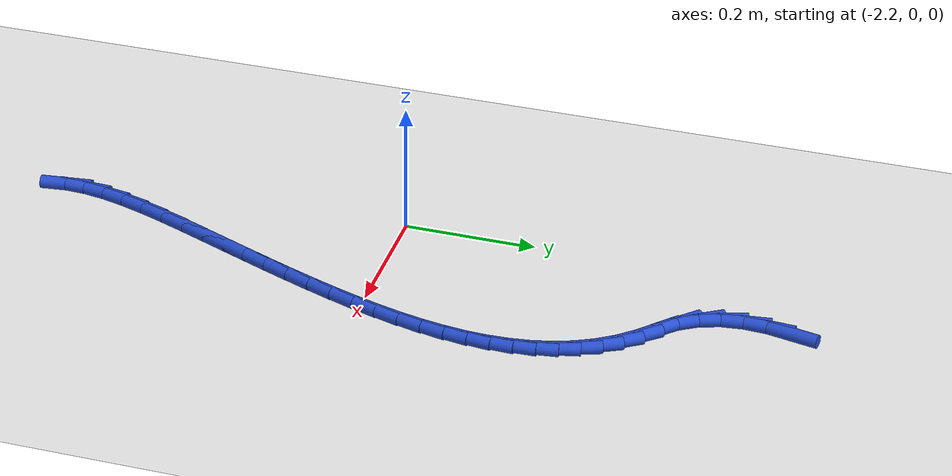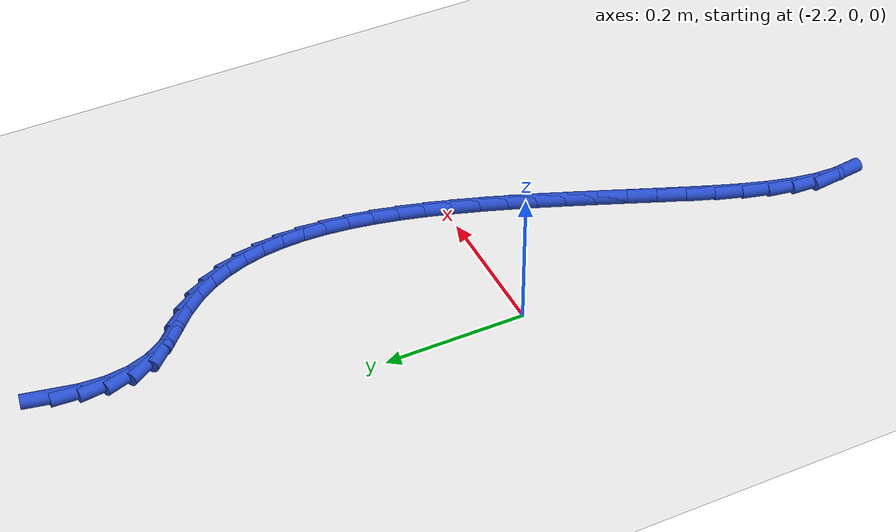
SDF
<sdf version="1.6">
 <world name="default">
  <model name="ground_plane">
   <static>1</static>
   <link name="link">
    <collision name="collision">
     <geometry><plane><normal>0 0 1</normal><size>100 100</size></plane></geometry>
     <surface><friction><ode><mu>100</mu><mu2>50</mu2></ode></friction></surface>
    </collision>
    <visual name="visual">
     <cast_shadows>0</cast_shadows>
     <geometry><plane><normal>0 0 1</normal><size>100 100</size></plane></geometry>
     <material>
      <script><uri>file://media/materials/scripts/gazebo.material</uri><name>Gazebo/WhiteGlow</name></script>
     </material>
    </visual>
   </link>
  </model>
  <model name="line">
   <link name="link_88">
    <pose>-2.0755575447734604 0.6091693701642646 0.01 0 1.57 1.3709296939682287</pose>
    <collision name="collision">
     <geometry><cylinder><radius>0.01</radius><length>0.08</length></cylinder></geometry>
    </collision>
    <visual name="visual">
     <material>
      <script><name>Gazebo/Blue</name><uri>file://media/materials/scripts/gazebo.material</uri></script>
     </material>
     <geometry><cylinder><radius>0.01</radius><length>0.08</length></cylinder></geometry>
    </visual>
   </link>
   <link name="link_89">
    <pose>-2.082812165718973 0.573356672024584 0.01 0 1.57 1.5164014801422128</pose>
    <collision name="collision">
     <geometry><cylinder><radius>0.01</radius><length>0.08</length></cylinder></geometry>
    </collision>
    <visual name="visual">
     <material>
      <script><name>Gazebo/Blue</name><uri>file://media/materials/scripts/gazebo.material</uri></script>
     </material>
     <geometry><cylinder><radius>0.01</radius><length>0.08</length></cylinder></geometry>
    </visual>
   </link>
   <link name="link_90">
    <pose>-2.0847019543621523 0.538648890746125 0.01 0 1.57 -1.450763806027646</pose>
    <collision name="collision">
     <geometry><cylinder><radius>0.01</radius><length>0.08</length></cylinder></geometry>
    </collision>
    <visual name="visual">
     <material>
      <script><name>Gazebo/Blue</name><uri>file://media/materials/scripts/gazebo.material</uri></script>
     </material>
     <geometry><cylinder><radius>0.01</radius><length>0.08</length></cylinder></geometry>
    </visual>
   </link>
   <link name="link_91">
    <pose>-2.0807313624344825 0.5057286089081323 0.01 0 1.57 -1.2438395106665938</pose>
    <collision name="collision">
     <geometry><cylinder><radius>0.01</radius><length>0.08</length></cylinder></geometry>
    </collision>
    <visual name="visual">
     <material>
      <script><name>Gazebo/Blue</name><uri>file://media/materials/scripts/gazebo.material</uri></script>
     </material>
     <geometry><cylinder><radius>0.01</radius><length>0.08</length></cylinder></geometry>
    </visual>
   </link>
   <link name="link_92">
    <pose>-2.070404841667447 0.4752784090898501 0.01 0 1.57 -1.009119800050276</pose>
    <collision name="collision">
     <geometry><cylinder><radius>0.01</radius><length>0.08</length></cylinder></geometry>
    </collision>
    <visual name="visual">
     <material>
      <script><name>Gazebo/Blue</name><uri>file://media/materials/scripts/gazebo.material</uri></script>
     </material>
     <geometry><cylinder><radius>0.01</radius><length>0.08</length></cylinder></geometry>
    </visual>
   </link>
   <link name="link_93">
    <pose>-2.053226843792532 0.44798087387052393 0.01 0 1.57 -0.7908722680773461</pose>
    <collision name="collision">
     <geometry><cylinder><radius>0.01</radius><length>0.08</length></cylinder></geometry>
    </collision>
    <visual name="visual">
     <material>
      <script><name>Gazebo/Blue</name><uri>file://media/materials/scripts/gazebo.material</uri></script>
     </material>
     <geometry><cylinder><radius>0.01</radius><length>0.08</length></cylinder></geometry>
    </visual>
   </link>
   <link name="link_94">
    <pose>-2.029565934565733 0.4240594915973769 0.01 0 1.57 -0.7531546775900435</pose>
    <collision name="collision">
     <geometry><cylinder><radius>0.01</radius><length>0.08</length></cylinder></geometry>
    </collision>
    <visual name="visual">
     <material>
      <script><name>Gazebo/Blue</name><uri>file://media/materials/scripts/gazebo.material</uri></script>
     </material>
     <geometry><cylinder><radius>0.01</radius><length>0.08</length></cylinder></geometry>
    </visual>
   </link>
   <link name="link_95">
    <pose>-2.0049580896609607 0.40098947995273265 0.01 0 1.57 -0.8614012740060931</pose>
    <collision name="collision">
     <geometry><cylinder><radius>0.01</radius><length>0.08</length></cylinder></geometry>
    </collision>
    <visual name="visual">
     <material>
      <script><name>Gazebo/Blue</name><uri>file://media/materials/scripts/gazebo.material</uri></script>
     </material>
     <geometry><cylinder><radius>0.01</radius><length>0.08</length></cylinder></geometry>
    </visual>
   </link>
   <link name="link_96">
    <pose>-1.9840000756799603 0.376576472054642 0.01 0 1.57 -0.9853960832167896</pose>
    <collision name="collision">
     <geometry><cylinder><radius>0.01</radius><length>0.08</length></cylinder></geometry>
    </collision>
    <visual name="visual">
     <material>
      <script><name>Gazebo/Blue</name><uri>file://media/materials/scripts/gazebo.material</uri></script>
     </material>
     <geometry><cylinder><radius>0.01</radius><length>0.08</length></cylinder></geometry>
    </visual>
   </link>
   <link name="link_97">
    <pose>-1.9668596951974717 0.35072036521623956 0.01 0 1.57 -1.1094852020513917</pose>
    <collision name="collision">
     <geometry><cylinder><radius>0.01</radius><length>0.08</length></cylinder></geometry>
    </collision>
    <visual name="visual">
     <material>
      <script><name>Gazebo/Blue</name><uri>file://media/materials/scripts/gazebo.material</uri></script>
     </material>
     <geometry><cylinder><radius>0.01</radius><length>0.08</length></cylinder></geometry>
    </visual>
   </link>
   <link name="link_98">
    <pose>-1.9533284318732258 0.32349901819745674 0.01 0 1.57 -1.2293606598366462</pose>
    <collision name="collision">
     <geometry><cylinder><radius>0.01</radius><length>0.08</length></cylinder></geometry>
    </collision>
    <visual name="visual">
     <material>
      <script><name>Gazebo/Blue</name><uri>file://media/materials/scripts/gazebo.material</uri></script>
     </material>
     <geometry><cylinder><radius>0.01</radius><length>0.08</length></cylinder></geometry>
    </visual>
   </link>
   <link name="link_99">
    <pose>-1.943197769366955 0.2949902897582256 0.01 0 1.57 -1.3414265563358536</pose>
    <collision name="collision">
     <geometry><cylinder><radius>0.01</radius><length>0.08</length></cylinder></geometry>
    </collision>
    <visual name="visual">
     <material>
      <script><name>Gazebo/Blue</name><uri>file://media/materials/scripts/gazebo.material</uri></script>
     </material>
     <geometry><cylinder><radius>0.01</radius><length>0.08</length></cylinder></geometry>
    </visual>
   </link>
   <link name="link_100">
    <pose>-1.9362591913383895 0.2652720386584775 0.01 0 1.57 -1.4432901941853533</pose>
    <collision name="collision">
     <geometry><cylinder><radius>0.01</radius><length>0.08</length></cylinder></geometry>
    </collision>
    <visual name="visual">
     <material>
      <script><name>Gazebo/Blue</name><uri>file://media/materials/scripts/gazebo.material</uri></script>
     </material>
     <geometry><cylinder><radius>0.01</radius><length>0.08</length></cylinder></geometry>
    </visual>
   </link>
   <link name="link_101">
    <pose>-1.932304181447261 0.23442212365814344 0.01 0 1.57 -1.5338282079335543</pose>
    <collision name="collision">
     <geometry><cylinder><radius>0.01</radius><length>0.08</length></cylinder></geometry>
    </collision>
    <visual name="visual">
     <material>
      <script><name>Gazebo/Blue</name><uri>file://media/materials/scripts/gazebo.material</uri></script>
     </material>
     <geometry><cylinder><radius>0.01</radius><length>0.08</length></cylinder></geometry>
    </visual>
   </link>
   <link name="link_102">
    <pose>-1.9311242233533006 0.20251840351715583 0.01 0 1.57 1.5286500274262012</pose>
    <collision name="collision">
     <geometry><cylinder><radius>0.01</radius><length>0.08</length></cylinder></geometry>
    </collision>
    <visual name="visual">
     <material>
      <script><name>Gazebo/Blue</name><uri>file://media/materials/scripts/gazebo.material</uri></script>
     </material>
     <geometry><cylinder><radius>0.01</radius><length>0.08</length></cylinder></geometry>
    </visual>
   </link>
   <link name="link_103">
    <pose>-1.93251080071624 0.16963873699544582 0.01 0 1.57 1.4603873175424436</pose>
    <collision name="collision">
     <geometry><cylinder><radius>0.01</radius><length>0.08</length></cylinder></geometry>
    </collision>
    <visual name="visual">
     <material>
      <script><name>Gazebo/Blue</name><uri>file://media/materials/scripts/gazebo.material</uri></script>
     </material>
     <geometry><cylinder><radius>0.01</radius><length>0.08</length></cylinder></geometry>
    </visual>
   </link>
   <link name="link_104">
    <pose>-1.9362553971958094 0.13586098285294504 0.01 0 1.57 1.402056670998876</pose>
    <collision name="collision">
     <geometry><cylinder><radius>0.01</radius><length>0.08</length></cylinder></geometry>
    </collision>
    <visual name="visual">
     <material>
      <script><name>Gazebo/Blue</name><uri>file://media/materials/scripts/gazebo.material</uri></script>
     </material>
     <geometry><cylinder><radius>0.01</radius><length>0.08</length></cylinder></geometry>
    </visual>
   </link>
   <link name="link_105">
    <pose>-1.9421494964517405 0.10126299984958484 0.01 0 1.57 1.3526215927438254</pose>
    <collision name="collision">
     <geometry><cylinder><radius>0.01</radius><length>0.08</length></cylinder></geometry>
    </collision>
    <visual name="visual">
     <material>
      <script><name>Gazebo/Blue</name><uri>file://media/materials/scripts/gazebo.material</uri></script>
     </material>
     <geometry><cylinder><radius>0.01</radius><length>0.08</length></cylinder></geometry>
    </visual>
   </link>
   <link name="link_106">
    <pose>-1.9499845821437658 0.06592264674529619 0.01 0 1.57 1.3110690570220092</pose>
    <collision name="collision">
     <geometry><cylinder><radius>0.01</radius><length>0.08</length></cylinder></geometry>
    </collision>
    <visual name="visual">
     <material>
      <script><name>Gazebo/Blue</name><uri>file://media/materials/scripts/gazebo.material</uri></script>
     </material>
     <geometry><cylinder><radius>0.01</radius><length>0.08</length></cylinder></geometry>
    </visual>
   </link>
   <link name="link_107">
    <pose>-1.959552137931615 0.029917782300012095 0.01 0 1.57 1.2764823913270738</pose>
    <collision name="collision">
     <geometry><cylinder><radius>0.01</radius><length>0.08</length></cylinder></geometry>
    </collision>
    <visual name="visual">
     <material>
      <script><name>Gazebo/Blue</name><uri>file://media/materials/scripts/gazebo.material</uri></script>
     </material>
     <geometry><cylinder><radius>0.01</radius><length>0.08</length></cylinder></geometry>
    </visual>
   </link>
   <link name="link_108">
    <pose>-1.9706436474750193 -0.006673734726336658 0.01 0 1.57 1.248071461053329</pose>
    <collision name="collision">
     <geometry><cylinder><radius>0.01</radius><length>0.08</length></cylinder></geometry>
    </collision>
    <visual name="visual">
     <material>
      <script><name>Gazebo/Blue</name><uri>file://media/materials/scripts/gazebo.material</uri></script>
     </material>
     <geometry><cylinder><radius>0.01</radius><length>0.08</length></cylinder></geometry>
    </visual>
   </link>
   <link name="link_109">
    <pose>-1.9830505944337111 -0.043774045573818476 0.01 0 1.57 1.2251789599161185</pose>
    <collision name="collision">
     <geometry><cylinder><radius>0.01</radius><length>0.08</length></cylinder></geometry>
    </collision>
    <visual name="visual">
     <material>
      <script><name>Gazebo/Blue</name><uri>file://media/materials/scripts/gazebo.material</uri></script>
     </material>
     <geometry><cylinder><radius>0.01</radius><length>0.08</length></cylinder></geometry>
    </visual>
   </link>
   <link name="link_110">
    <pose>-1.9965644624674208 -0.08130529148250192 0.01 0 1.57 1.2072750096784404</pose>
    <collision name="collision">
     <geometry><cylinder><radius>0.01</radius><length>0.08</length></cylinder></geometry>
    </collision>
    <visual name="visual">
     <material>
      <script><name>Gazebo/Blue</name><uri>file://media/materials/scripts/gazebo.material</uri></script>
     </material>
     <geometry><cylinder><radius>0.01</radius><length>0.08</length></cylinder></geometry>
    </visual>
   </link>
   <link name="link_111">
    <pose>-2.0109767352358796 -0.11918961369245526 0.01 0 1.57 1.193947246933236</pose>
    <collision name="collision">
     <geometry><cylinder><radius>0.01</radius><length>0.08</length></cylinder></geometry>
    </collision>
    <visual name="visual">
     <material>
      <script><name>Gazebo/Blue</name><uri>file://media/materials/scripts/gazebo.material</uri></script>
     </material>
     <geometry><cylinder><radius>0.01</radius><length>0.08</length></cylinder></geometry>
    </visual>
   </link>
   <link name="link_112">
    <pose>-2.02607889639882 -0.15734915344374803 0.01 0 1.57 1.1848903134334072</pose>
    <collision name="collision">
     <geometry><cylinder><radius>0.01</radius><length>0.08</length></cylinder></geometry>
    </collision>
    <visual name="visual">
     <material>
      <script><name>Gazebo/Blue</name><uri>file://media/materials/scripts/gazebo.material</uri></script>
     </material>
     <geometry><cylinder><radius>0.01</radius><length>0.08</length></cylinder></geometry>
    </visual>
   </link>
   <link name="link_113">
    <pose>-2.041662429615971 -0.19570605197644675 0.01 0 1.57 1.1798967411482812</pose>
    <collision name="collision">
     <geometry><cylinder><radius>0.01</radius><length>0.08</length></cylinder></geometry>
    </collision>
    <visual name="visual">
     <material>
      <script><name>Gazebo/Blue</name><uri>file://media/materials/scripts/gazebo.material</uri></script>
     </material>
     <geometry><cylinder><radius>0.01</radius><length>0.08</length></cylinder></geometry>
    </visual>
   </link>
   <link name="link_114">
    <pose>-2.057518818547065 -0.23418245053062087 0.01 0 1.57 1.1788501646883771</pose>
    <collision name="collision">
     <geometry><cylinder><radius>0.01</radius><length>0.08</length></cylinder></geometry>
    </collision>
    <visual name="visual">
     <material>
      <script><name>Gazebo/Blue</name><uri>file://media/materials/scripts/gazebo.material</uri></script>
     </material>
     <geometry><cylinder><radius>0.01</radius><length>0.08</length></cylinder></geometry>
    </visual>
   </link>
   <link name="link_115">
    <pose>-2.0734395468518345 -0.2727004903463388 0.01 0 1.57 1.1817591141603805</pose>
    <collision name="collision">
     <geometry><cylinder><radius>0.01</radius><length>0.08</length></cylinder></geometry>
    </collision>
    <visual name="visual">
     <material>
      <script><name>Gazebo/Blue</name><uri>file://media/materials/scripts/gazebo.material</uri></script>
     </material>
     <geometry><cylinder><radius>0.01</radius><length>0.08</length></cylinder></geometry>
    </visual>
   </link>
   <link name="link_116">
    <pose>-2.0892139214818872 -0.3111811546085508 0.01 0 1.57 1.1919270710762424</pose>
    <collision name="collision">
     <geometry><cylinder><radius>0.01</radius><length>0.08</length></cylinder></geometry>
    </collision>
    <visual name="visual">
     <material>
      <script><name>Gazebo/Blue</name><uri>file://media/materials/scripts/gazebo.material</uri></script>
     </material>
     <geometry><cylinder><radius>0.01</radius><length>0.08</length></cylinder></geometry>
    </visual>
   </link>
   <link name="link_117">
    <pose>-2.1044480123804665 -0.3494479405079866 0.01 0 1.57 1.2157364426113337</pose>
    <collision name="collision">
     <geometry><cylinder><radius>0.01</radius><length>0.08</length></cylinder></geometry>
    </collision>
    <visual name="visual">
     <material>
      <script><name>Gazebo/Blue</name><uri>file://media/materials/scripts/gazebo.material</uri></script>
     </material>
     <geometry><cylinder><radius>0.01</radius><length>0.08</length></cylinder></geometry>
    </visual>
   </link>
   <link name="link_118">
    <pose>-2.118428583969184 -0.38715446789174307 0.01 0 1.57 1.2558921969793195</pose>
    <collision name="collision">
     <geometry><cylinder><radius>0.01</radius><length>0.08</length></cylinder></geometry>
    </collision>
    <visual name="visual">
     <material>
      <script><name>Gazebo/Blue</name><uri>file://media/materials/scripts/gazebo.material</uri></script>
     </material>
     <geometry><cylinder><radius>0.01</radius><length>0.08</length></cylinder></geometry>
    </visual>
   </link>
   <link name="link_119">
    <pose>-2.130410350353981 -0.423937305155817 0.01 0 1.57 1.3161963467802629</pose>
    <collision name="collision">
     <geometry><cylinder><radius>0.01</radius><length>0.08</length></cylinder></geometry>
    </collision>
    <visual name="visual">
     <material>
      <script><name>Gazebo/Blue</name><uri>file://media/materials/scripts/gazebo.material</uri></script>
     </material>
     <geometry><cylinder><radius>0.01</radius><length>0.08</length></cylinder></geometry>
    </visual>
   </link>
   <link name="link_120">
    <pose>-2.1396480256407986 -0.4594330206962023 0.01 0 1.57 1.4025606473834742</pose>
    <collision name="collision">
     <geometry><cylinder><radius>0.01</radius><length>0.08</length></cylinder></geometry>
    </collision>
    <visual name="visual">
     <material>
      <script><name>Gazebo/Blue</name><uri>file://media/materials/scripts/gazebo.material</uri></script>
     </material>
     <geometry><cylinder><radius>0.01</radius><length>0.08</length></cylinder></geometry>
    </visual>
   </link>
   <link name="link_121">
    <pose>-2.1453963239355787 -0.49327818290889563 0.01 0 1.57 1.5232801426462452</pose>
    <collision name="collision">
     <geometry><cylinder><radius>0.01</radius><length>0.08</length></cylinder></geometry>
    </collision>
    <visual name="visual">
     <material>
      <script><name>Gazebo/Blue</name><uri>file://media/materials/scripts/gazebo.material</uri></script>
     </material>
     <geometry><cylinder><radius>0.01</radius><length>0.08</length></cylinder></geometry>
    </visual>
   </link>
   <link name="link_122">
    <pose>-2.1469099593442635 -0.5251093601898931 0.01 0 1.57 -1.4536485672401194</pose>
    <collision name="collision">
     <geometry><cylinder><radius>0.01</radius><length>0.08</length></cylinder></geometry>
    </collision>
    <visual name="visual">
     <material>
      <script><name>Gazebo/Blue</name><uri>file://media/materials/scripts/gazebo.material</uri></script>
     </material>
     <geometry><cylinder><radius>0.01</radius><length>0.08</length></cylinder></geometry>
    </visual>
   </link>
  </model>
 </world>
</sdf>
